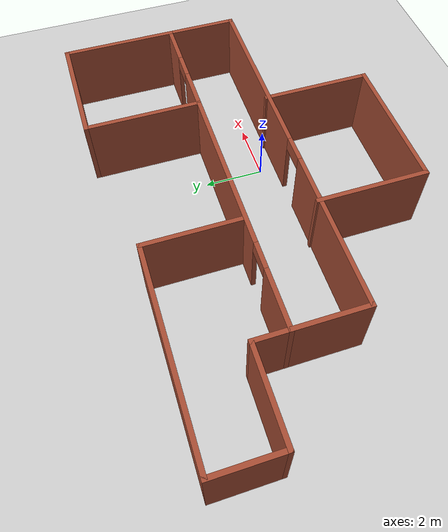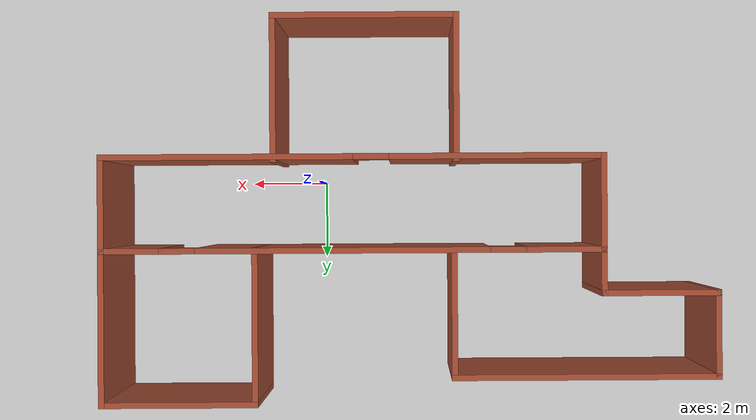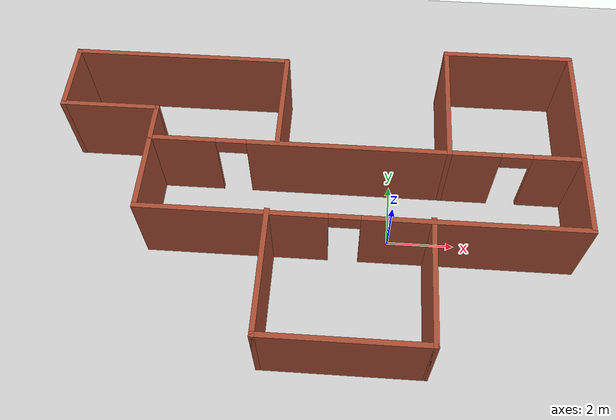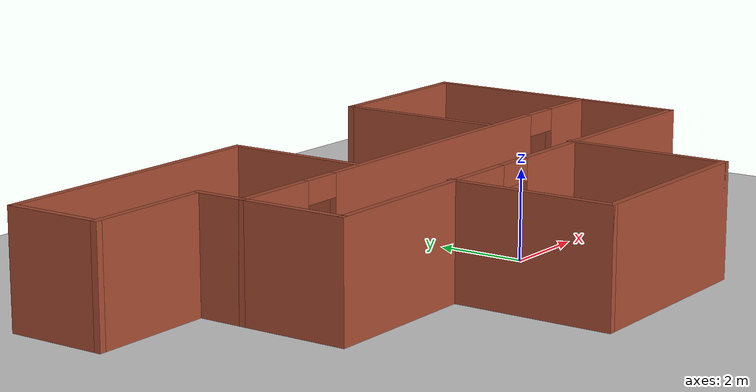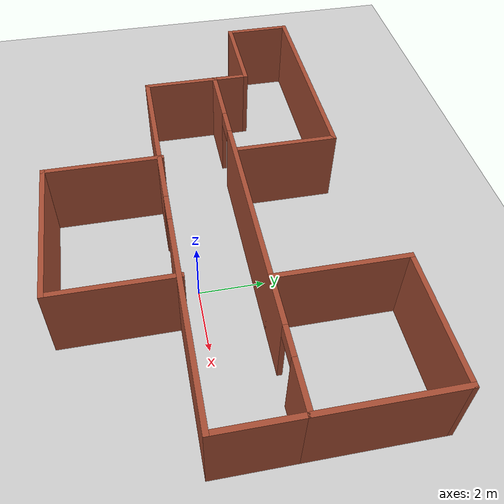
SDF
<sdf version="1.7">
 <world name="default">
  <model name="ground_plane">
   <static>1</static>
   <link name="link">
    <collision name="collision">
     <geometry><plane><normal>0 0 1</normal><size>100 100</size></plane></geometry>
     <surface><friction><ode><mu>100</mu><mu2>50</mu2></ode></friction></surface>
    </collision>
    <visual name="visual">
     <cast_shadows>0</cast_shadows>
     <geometry><plane><normal>0 0 1</normal><size>100 100</size></plane></geometry>
     <material>
      <script><uri>file://media/materials/scripts/gazebo.material</uri><name>Gazebo/Grey</name></script>
     </material>
    </visual>
   </link>
  </model>
  <light name="sun" type="directional">
   <pose>0 0 10 0 -0 0</pose>
   <diffuse>0.8 0.8 0.8 1</diffuse>
   <specular>0.2 0.2 0.2 1</specular>
   <attenuation>
    <range>1000</range>
    <constant>0.9</constant>
    <linear>0.01</linear>
    <quadratic>0.001</quadratic>
   </attenuation>
   <direction>-0.5 0.1 -0.9</direction>
   <spot><inner_angle>0</inner_angle><outer_angle>0</outer_angle><falloff>0</falloff></spot>
  </light>
  <scene><shadows>0</shadows><ambient>0.4 0.4 0.4 1</ambient><background>0.7 0.7 0.7 1</background></scene>
  <physics type="ode">
   <real_time_update_rate>1000</real_time_update_rate>
   <max_step_size>0.001</max_step_size>
   <real_time_factor>1</real_time_factor>
   <ode>
    <solver>
     <type>quick</type>
     <iters>150</iters>
     <precon_iters>0</precon_iters>
     <sor>1.4</sor>
     <use_dynamic_moi_rescaling>1</use_dynamic_moi_rescaling>
    </solver>
    <constraints>
     <cfm>1e-05</cfm>
     <erp>0.2</erp>
     <contact_max_correcting_vel>2000</contact_max_correcting_vel>
     <contact_surface_layer>0.01</contact_surface_layer>
    </constraints>
   </ode>
  </physics>
  <gravity>0 0 -9.8</gravity>
  <magnetic_field>6e-06 2.3e-05 -4.2e-05</magnetic_field>
  <atmosphere type="adiabatic"/>
  <audio><device>default</device></audio>
  <spherical_coordinates>
   <surface_model>EARTH_WGS84</surface_model>
   <latitude_deg>0</latitude_deg>
   <longitude_deg>0</longitude_deg>
   <elevation>0</elevation>
   <heading_deg>0</heading_deg>
  </spherical_coordinates>
  <model name="House">
   <pose>-2.29141 0.720141 0 0 -0 0</pose>
   <link name="Wall_10">
    <pose>1.425 1.01943 0 0 -0 0</pose>
    <visual name="Wall_10_Visual_0">
     <pose>-5.36509 0 1.25 0 -0 0</pose>
     <geometry><box><size>2.01982 0.15 2.5</size></box></geometry>
     <material>
      <script><uri>file://media/materials/scripts/gazebo.material</uri><name>Gazebo/Bricks</name></script>
      <ambient>1 1 1 1</ambient>
     </material>
     <meta><layer>0</layer></meta>
    </visual>
    <collision name="Wall_10_Collision_0">
     <geometry><box><size>2.01982 0.15 2.5</size></box></geometry>
     <pose>-5.36509 0 1.25 0 -0 0</pose>
    </collision>
    <visual name="Wall_10_Visual_1">
     <pose>0.245813 0 1.25 0 -0 0</pose>
     <geometry><box><size>7.40198 0.15 2.5</size></box></geometry>
     <material>
      <script><uri>file://media/materials/scripts/gazebo.material</uri><name>Gazebo/Bricks</name></script>
      <ambient>1 1 1 1</ambient>
     </material>
     <meta><layer>0</layer></meta>
    </visual>
    <collision name="Wall_10_Collision_1">
     <geometry><box><size>7.40198 0.15 2.5</size></box></geometry>
     <pose>0.245813 0 1.25 0 -0 0</pose>
    </collision>
    <visual name="Wall_10_Visual_2">
     <pose>5.6109 0 1.25 0 -0 0</pose>
     <geometry><box><size>1.52819 0.15 2.5</size></box></geometry>
     <material>
      <script><uri>file://media/materials/scripts/gazebo.material</uri><name>Gazebo/Bricks</name></script>
      <ambient>1 1 1 1</ambient>
     </material>
     <meta><layer>0</layer></meta>
    </visual>
    <collision name="Wall_10_Collision_2">
     <geometry><box><size>1.52819 0.15 2.5</size></box></geometry>
     <pose>5.6109 0 1.25 0 -0 0</pose>
    </collision>
    <visual name="Wall_10_Visual_3">
     <pose>-3.90518 0 2.25 0 -0 0</pose>
     <geometry><box><size>0.9 0.15 0.5</size></box></geometry>
     <material>
      <script><uri>file://media/materials/scripts/gazebo.material</uri><name>Gazebo/Bricks</name></script>
      <ambient>1 1 1 1</ambient>
     </material>
     <meta><layer>0</layer></meta>
    </visual>
    <collision name="Wall_10_Collision_3">
     <geometry><box><size>0.9 0.15 0.5</size></box></geometry>
     <pose>-3.90518 0 2.25 0 -0 0</pose>
    </collision>
    <visual name="Wall_10_Visual_4">
     <pose>4.3968 0 2.25 0 -0 0</pose>
     <geometry><box><size>0.9 0.15 0.5</size></box></geometry>
     <material>
      <script><uri>file://media/materials/scripts/gazebo.material</uri><name>Gazebo/Bricks</name></script>
      <ambient>1 1 1 1</ambient>
     </material>
     <meta><layer>0</layer></meta>
    </visual>
    <collision name="Wall_10_Collision_4">
     <geometry><box><size>0.9 0.15 0.5</size></box></geometry>
     <pose>4.3968 0 2.25 0 -0 0</pose>
    </collision>
   </link>
   <link name="Wall_12">
    <collision name="Wall_12_Collision">
     <geometry><box><size>2.5 0.15 2.5</size></box></geometry>
     <pose>0 0 1.25 0 -0 0</pose>
    </collision>
    <visual name="Wall_12_Visual">
     <pose>0 0 1.25 0 -0 0</pose>
     <geometry><box><size>2.5 0.15 2.5</size></box></geometry>
     <material>
      <script><uri>file://media/materials/scripts/gazebo.material</uri><name>Gazebo/Bricks</name></script>
      <ambient>1 1 1 1</ambient>
     </material>
     <meta><layer>0</layer></meta>
    </visual>
    <pose>-4.875 -0.155567 0 0 -0 -1.5708</pose>
   </link>
   <link name="Wall_13">
    <pose>1.425 -1.33057 0 0 -0 0</pose>
    <visual name="Wall_13_Visual_0">
     <pose>-3.64538 0 1.25 0 -0 0</pose>
     <geometry><box><size>5.45924 0.15 2.5</size></box></geometry>
     <material>
      <script><uri>file://media/materials/scripts/gazebo.material</uri><name>Gazebo/Bricks</name></script>
      <ambient>1 1 1 1</ambient>
     </material>
     <meta><layer>0</layer></meta>
    </visual>
    <collision name="Wall_13_Collision_0">
     <geometry><box><size>5.45924 0.15 2.5</size></box></geometry>
     <pose>-3.64538 0 1.25 0 -0 0</pose>
    </collision>
    <visual name="Wall_13_Visual_1">
     <pose>3.17962 0 1.25 0 -0 0</pose>
     <geometry><box><size>6.39076 0.15 2.5</size></box></geometry>
     <material>
      <script><uri>file://media/materials/scripts/gazebo.material</uri><name>Gazebo/Bricks</name></script>
      <ambient>1 1 1 1</ambient>
     </material>
     <meta><layer>0</layer></meta>
    </visual>
    <collision name="Wall_13_Collision_1">
     <geometry><box><size>6.39076 0.15 2.5</size></box></geometry>
     <pose>3.17962 0 1.25 0 -0 0</pose>
    </collision>
    <visual name="Wall_13_Visual_2">
     <pose>-0.465757 0 2.25 0 -0 0</pose>
     <geometry><box><size>0.9 0.15 0.5</size></box></geometry>
     <material>
      <script><uri>file://media/materials/scripts/gazebo.material</uri><name>Gazebo/Bricks</name></script>
      <ambient>1 1 1 1</ambient>
     </material>
     <meta><layer>0</layer></meta>
    </visual>
    <collision name="Wall_13_Collision_2">
     <geometry><box><size>0.9 0.15 0.5</size></box></geometry>
     <pose>-0.465757 0 2.25 0 -0 0</pose>
    </collision>
   </link>
   <link name="Wall_14">
    <collision name="Wall_14_Collision">
     <geometry><box><size>2.5 0.15 2.5</size></box></geometry>
     <pose>0 0 1.25 0 -0 0</pose>
    </collision>
    <visual name="Wall_14_Visual">
     <pose>0 0 1.25 0 -0 0</pose>
     <geometry><box><size>2.5 0.15 2.5</size></box></geometry>
     <material>
      <script><uri>file://media/materials/scripts/gazebo.material</uri><name>Gazebo/Bricks</name></script>
      <ambient>1 1 1 1</ambient>
     </material>
     <meta><layer>0</layer></meta>
    </visual>
    <pose>7.725 -0.155567 0 0 -0 1.5708</pose>
   </link>
   <link name="Wall_15">
    <collision name="Wall_15_Collision">
     <geometry><box><size>4 0.15 2.5</size></box></geometry>
     <pose>0 0 1.25 0 -0 0</pose>
    </collision>
    <visual name="Wall_15_Visual">
     <pose>0 0 1.25 0 -0 0</pose>
     <geometry><box><size>4 0.15 2.5</size></box></geometry>
     <material>
      <script><uri>file://media/materials/scripts/gazebo.material</uri><name>Gazebo/Bricks</name></script>
      <ambient>1 1 1 1</ambient>
     </material>
     <meta><layer>0</layer></meta>
    </visual>
    <pose>7.725 2.94443 0 0 -0 1.5708</pose>
   </link>
   <link name="Wall_16">
    <collision name="Wall_16_Collision">
     <geometry><box><size>4 0.15 2.5</size></box></geometry>
     <pose>0 0 1.25 0 -0 0</pose>
    </collision>
    <visual name="Wall_16_Visual">
     <pose>0 0 1.25 0 -0 0</pose>
     <geometry><box><size>4 0.15 2.5</size></box></geometry>
     <material>
      <script><uri>file://media/materials/scripts/gazebo.material</uri><name>Gazebo/Bricks</name></script>
      <ambient>1 1 1 1</ambient>
     </material>
     <meta><layer>0</layer></meta>
    </visual>
    <pose>5.8 4.86943 0 0 -0 3.14159</pose>
   </link>
   <link name="Wall_17">
    <collision name="Wall_17_Collision">
     <geometry><box><size>4 0.15 2.5</size></box></geometry>
     <pose>0 0 1.25 0 -0 0</pose>
    </collision>
    <visual name="Wall_17_Visual">
     <pose>0 0 1.25 0 -0 0</pose>
     <geometry><box><size>4 0.15 2.5</size></box></geometry>
     <material>
      <script><uri>file://media/materials/scripts/gazebo.material</uri><name>Gazebo/Bricks</name></script>
      <ambient>1 1 1 1</ambient>
     </material>
     <meta><layer>0</layer></meta>
    </visual>
    <pose>3.875 2.94443 0 0 -0 -1.5708</pose>
   </link>
   <link name="Wall_19">
    <collision name="Wall_19_Collision">
     <geometry><box><size>3.75 0.15 2.5</size></box></geometry>
     <pose>0 0 1.25 0 -0 0</pose>
    </collision>
    <visual name="Wall_19_Visual">
     <pose>0 0 1.25 0 -0 0</pose>
     <geometry><box><size>3.75 0.15 2.5</size></box></geometry>
     <material>
      <script><uri>file://media/materials/scripts/gazebo.material</uri><name>Gazebo/Bricks</name></script>
      <ambient>1 1 1 1</ambient>
     </material>
     <meta><layer>0</layer></meta>
    </visual>
    <pose>-1.19291 -3.06943 0 0 -0 -1.5708</pose>
   </link>
   <link name="Wall_20">
    <collision name="Wall_20_Collision">
     <geometry><box><size>4.75 0.15 2.5</size></box></geometry>
     <pose>0 0 1.25 0 -0 0</pose>
    </collision>
    <visual name="Wall_20_Visual">
     <pose>0 0 1.25 0 -0 0</pose>
     <geometry><box><size>4.75 0.15 2.5</size></box></geometry>
     <material>
      <script><uri>file://media/materials/scripts/gazebo.material</uri><name>Gazebo/Bricks</name></script>
      <ambient>1 1 1 1</ambient>
     </material>
     <meta><layer>0</layer></meta>
    </visual>
    <pose>1.10709 -4.86943 0 0 -0 0</pose>
   </link>
   <link name="Wall_21">
    <collision name="Wall_21_Collision">
     <geometry><box><size>3.75 0.15 2.5</size></box></geometry>
     <pose>0 0 1.25 0 -0 0</pose>
    </collision>
    <visual name="Wall_21_Visual">
     <pose>0 0 1.25 0 -0 0</pose>
     <geometry><box><size>3.75 0.15 2.5</size></box></geometry>
     <material>
      <script><uri>file://media/materials/scripts/gazebo.material</uri><name>Gazebo/Bricks</name></script>
      <ambient>1 1 1 1</ambient>
     </material>
     <meta><layer>0</layer></meta>
    </visual>
    <pose>3.40709 -3.06943 0 0 -0 1.5708</pose>
   </link>
   <link name="Wall_23">
    <collision name="Wall_23_Collision">
     <geometry><box><size>1.25 0.15 2.5</size></box></geometry>
     <pose>0 0 1.25 0 -0 0</pose>
    </collision>
    <visual name="Wall_23_Visual">
     <pose>0 0 1.25 0 -0 0</pose>
     <geometry><box><size>1.25 0.15 2.5</size></box></geometry>
     <material>
      <script><uri>file://media/materials/scripts/gazebo.material</uri><name>Gazebo/Bricks</name></script>
      <ambient>1 1 1 1</ambient>
     </material>
     <meta><layer>0</layer></meta>
    </visual>
    <pose>-4.875 1.56943 0 0 -0 1.5708</pose>
   </link>
   <link name="Wall_24">
    <collision name="Wall_24_Collision">
     <geometry><box><size>3 0.15 2.5</size></box></geometry>
     <pose>0 0 1.25 0 -0 0</pose>
    </collision>
    <visual name="Wall_24_Visual">
     <pose>0 0 1.25 0 -0 0</pose>
     <geometry><box><size>3 0.15 2.5</size></box></geometry>
     <material>
      <script><uri>file://media/materials/scripts/gazebo.material</uri><name>Gazebo/Bricks</name></script>
      <ambient>1 1 1 1</ambient>
     </material>
     <meta><layer>0</layer></meta>
    </visual>
    <pose>-6.3 2.11943 0 0 -0 3.14159</pose>
   </link>
   <link name="Wall_25">
    <collision name="Wall_25_Collision">
     <geometry><box><size>2.25 0.15 2.5</size></box></geometry>
     <pose>0 0 1.25 0 -0 0</pose>
    </collision>
    <visual name="Wall_25_Visual">
     <pose>0 0 1.25 0 -0 0</pose>
     <geometry><box><size>2.25 0.15 2.5</size></box></geometry>
     <material>
      <script><uri>file://media/materials/scripts/gazebo.material</uri><name>Gazebo/Bricks</name></script>
      <ambient>1 1 1 1</ambient>
     </material>
     <meta><layer>0</layer></meta>
    </visual>
    <pose>-7.725 3.16943 0 0 -0 1.5708</pose>
   </link>
   <link name="Wall_26">
    <collision name="Wall_26_Collision">
     <geometry><box><size>6.75 0.15 2.5</size></box></geometry>
     <pose>0 0 1.25 0 -0 0</pose>
    </collision>
    <visual name="Wall_26_Visual">
     <pose>0 0 1.25 0 -0 0</pose>
     <geometry><box><size>6.75 0.15 2.5</size></box></geometry>
     <material>
      <script><uri>file://media/materials/scripts/gazebo.material</uri><name>Gazebo/Bricks</name></script>
      <ambient>1 1 1 1</ambient>
     </material>
     <meta><layer>0</layer></meta>
    </visual>
    <pose>-4.425 4.21943 0 0 -0 0</pose>
   </link>
   <link name="Wall_27">
    <collision name="Wall_27_Collision">
     <geometry><box><size>3.25 0.15 2.5</size></box></geometry>
     <pose>0 0 1.25 0 -0 0</pose>
    </collision>
    <visual name="Wall_27_Visual">
     <pose>0 0 1.25 0 -0 0</pose>
     <geometry><box><size>3.25 0.15 2.5</size></box></geometry>
     <material>
      <script><uri>file://media/materials/scripts/gazebo.material</uri><name>Gazebo/Bricks</name></script>
      <ambient>1 1 1 1</ambient>
     </material>
     <meta><layer>0</layer></meta>
    </visual>
    <pose>-1.125 2.66943 0 0 -0 -1.5708</pose>
   </link>
   <static>1</static>
  </model>
 </world>
</sdf>
